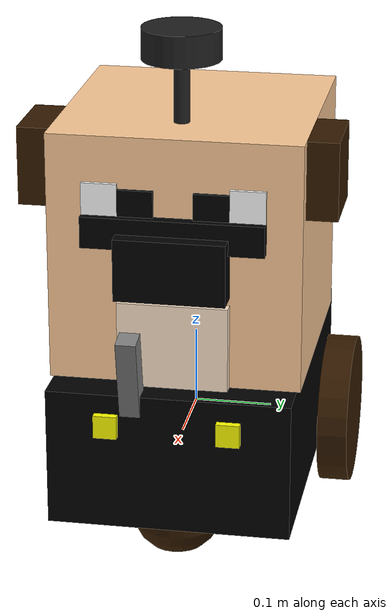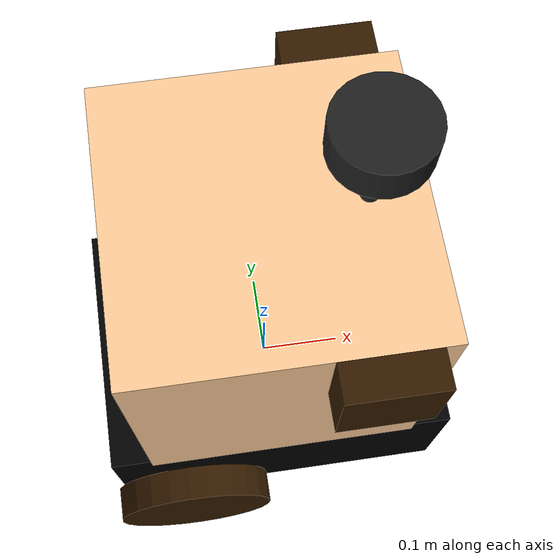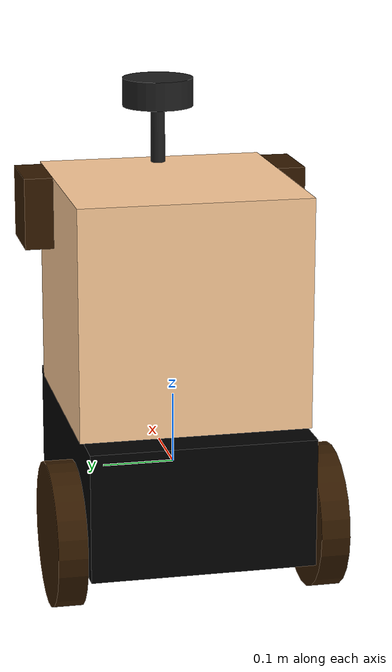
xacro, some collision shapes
<?xml version="1.0" ?>
<robot name='robot' xmlns:xacro="http://ros.org/wiki/xacro">

    <xacro:include filename="$(find robot_description)/urdf/gazebo.urdf.xacro" />
    <xacro:include filename="$(find robot_description)/urdf/lidar.urdf.xacro" />
    <xacro:include filename="$(find robot_description)/urdf/depth.urdf.xacro" />

     <!-- Define robot constants -->
  <xacro:property name="base_width" value="0.31"/>
  <xacro:property name="base_length" value="0.42"/>
  <xacro:property name="base_height" value="0.18"/>

  <xacro:property name="wheel_radius" value="0.10"/>
  <xacro:property name="wheel_width" value="0.04"/>
  <xacro:property name="wheel_ygap" value="0.025"/>
  <xacro:property name="wheel_zoff" value="0.05"/>
  <xacro:property name="wheel_xoff" value="0.12"/>

  <xacro:property name="caster_xoff" value="0.14"/>

  <!-- Define intertial property macros  -->
  <xacro:macro name="box_inertia" params="m w h d">
    <inertial>
      <origin xyz="0 0 0" rpy="${pi/2} 0 ${pi/2}"/>
      <mass value="${m}"/>
      <inertia ixx="${(m/12) * (h*h + d*d)}" ixy="0.0" ixz="0.0" iyy="${(m/12) * (w*w + d*d)}" iyz="0.0" izz="${(m/12) * (w*w + h*h)}"/>
    </inertial>
  </xacro:macro>

  <xacro:macro name="cylinder_inertia" params="m r h">
    <inertial>
      <origin xyz="0 0 0" rpy="${pi/2} 0 0" />
      <mass value="${m}"/>
      <inertia ixx="${(m/12) * (3*r*r + h*h)}" ixy = "0" ixz = "0" iyy="${(m/12) * (3*r*r + h*h)}" iyz = "0" izz="${(m/2) * (r*r)}"/>
    </inertial>
  </xacro:macro>

  <xacro:macro name="sphere_inertia" params="m r">
    <inertial>
      <mass value="${m}"/>
      <inertia ixx="${(2/5) * m * (r*r)}" ixy="0.0" ixz="0.0" iyy="${(2/5) * m * (r*r)}" iyz="0.0" izz="${(2/5) * m * (r*r)}"/>
    </inertial>
  </xacro:macro>

  <!-- Robot Base -->
  <link name="base_link">
    <visual>
      <geometry>
        <box size="${base_length} ${base_width} ${base_height}"/>
      </geometry>
      <material name="Black">
        <color rgba="0 0.0 0.0 1.0"/>
      </material>
    </visual>

        <collision>
      <geometry>
        <box size="${base_length} ${base_width} ${base_height}"/>
      </geometry>
    </collision>

    <xacro:box_inertia m="15" w="${base_width}" d="${base_length}" h="${base_height}"/>

  </link>

  <!-- Robot Footprint -->
  <link name="base_footprint"/>

  <joint name="base_joint" type="fixed">
    <parent link="base_link"/>
    <child link="base_footprint"/>
    <origin xyz="0.0 0.0 ${-(wheel_radius+wheel_zoff)}" rpy="0 0 0"/>
  </joint>

    <!-- Wheels -->
  <xacro:macro name="wheel" params="prefix x_reflect y_reflect">
    <link name="${prefix}_link">
      <visual>
        <origin xyz="0 0 0" rpy="${pi/2} 0 0"/>
        <geometry>
            <cylinder radius="${wheel_radius}" length="${wheel_width}"/>
        </geometry>
        <material name="Grey1">
			<color rgba="0.2 0.1 0.0 1.0"/>
		</material>
      </visual>
      <collision>
        <origin xyz="0 0 0" rpy="${pi/2} 0 0"/>
        <geometry>
          <cylinder radius="${wheel_radius}" length="${wheel_width}"/>
        </geometry>
      </collision>

      <xacro:cylinder_inertia m="0.5" r="${wheel_radius}" h="${wheel_width}"/>

    </link>

    <joint name="${prefix}_joint" type="continuous">
      <parent link="base_link"/>
      <child link="${prefix}_link"/>
      <origin xyz="${x_reflect*wheel_xoff} ${y_reflect*(base_width/2+wheel_ygap)} ${-wheel_zoff}" rpy="0 0 0"/>
      <axis xyz="0 1 0"/>
    </joint>
  </xacro:macro>

  <xacro:wheel prefix="drivewhl_l" x_reflect="-1" y_reflect="1" />
  <xacro:wheel prefix="drivewhl_r" x_reflect="-1" y_reflect="-1" />

    <!-- Caster Wheel -->
  <link name="front_caster">
    <visual>
      <geometry>
        <sphere radius="${(wheel_radius+wheel_zoff-(base_height/2))}"/>
      </geometry>
      <material name="Grey1">
		<color rgba="0.2 0.1 0.0 1.0"/>
	  </material>
    </visual>
        <collision>
      <origin xyz="0 0 0" rpy="0 0 0"/>
      <geometry>
        <sphere radius="${(wheel_radius+wheel_zoff-(base_height/2))}"/>
      </geometry>
    </collision>

    <xacro:sphere_inertia m="0.5" r="${(wheel_radius+wheel_zoff-(base_height/2))}"/>
  </link>

  <joint name="caster_joint" type="continuous">
    <parent link="base_link"/>
    <child link="front_caster"/>
    <origin xyz="${caster_xoff} 0.0 ${-(base_height/2)}" rpy="0 0 0"/>
    <axis xyz="1 0 0"/>
  </joint>

  <link name="fara1_link">
		<visual>
			<origin xyz="0 0 0" rpy="0 0 0"/>
			<geometry>
				<box size="0.04 0.03 0.03"/>
			</geometry>
	     	<material name="Pink">
				<color rgba="1.0 1.0 0.0 1.0"/>
			</material>
	   </visual>
	</link>

	<joint name="fara1_joint" type="fixed">
    	<parent link="base_link"/>
    	<child link="fara1_link"/>
    	<origin xyz="0.20 0.0775 0.05" rpy="0 0 0"/>
	</joint>

	<link name="fara2_link">
		<visual>
			<origin xyz="0 0 0" rpy="0 0 0"/>
			<geometry>
				<box size="0.04 0.03 0.03"/>
			</geometry>
	     	<material name="Pink">
				<color rgba="1.0 1.0 0.0 1.0"/>
			</material>
	   </visual>
	</link>

	<joint name="fara2_joint" type="fixed">
    	<parent link="base_link"/>
    	<child link="fara2_link"/>
    	<origin xyz="0.20 -0.0775 0.05" rpy="0 0 0"/>
	</joint>

 	<link name="base_shape">
		<visual>
		    <origin xyz="0 0 0" rpy="0 0 0"/>
			<geometry>
				<box size="0.32 0.32 0.32"/>
			</geometry>
			<material name="LightBrown">
	       		<color rgba="1 0.8 0.6 1.0"/>
	     	</material>
		</visual>

    <collision>
      <geometry>
        <box size="${base_length} ${base_length} ${base_length}"/>
      </geometry>
    </collision>

    <xacro:box_inertia m="15" w="${base_length}" d="${base_length}" h="${base_length}"/>

	</link>

	<joint name="base_shape_joint" type="fixed">
    	<parent link="base_link"/>
   		<child link="base_shape"/>
    	<origin xyz="0.0 0.0 0.25" rpy="0 0 0"/>
  	</joint>

	<link name="right_ear_link">
		<visual>
			<origin xyz="0 0 0" rpy="0 0 0"/>
			<geometry>
				<box size="0.1 0.04 0.1"/>
			</geometry>
	     	<material name="Grey1">
				<color rgba="0.2 0.1 0.0 1.0"/>
			</material>
	   </visual>
	</link>

	<joint name="right_ear_joint" type="fixed">
    	<parent link="base_shape"/>
    	<child link="right_ear_link"/>
    	<origin xyz="0.09 0.18 0.11" rpy="0 0 0"/>
	</joint>

	<link name="left_ear_link">
		<visual>
			<origin xyz="0 0 0" rpy="0 0 0"/>
			<geometry>
				<box size="0.1 0.04 0.1"/>
			</geometry>
	     	<material name="Grey1">
				<color rgba="0.2 0.1 0.0 1.0"/>
			</material>
	   </visual>
	</link>

	<joint name="left_ear_joint" type="fixed">
    	<parent link="base_shape"/>
    	<child link="left_ear_link"/>
    	<origin xyz="0.09 -0.18 0.11" rpy="0 0 0"/>
	</joint>

	<link name="eye_link">
		<visual>
			<origin xyz="0 0 0" rpy="0 0 0"/>
			<geometry>
				<box size="0.03 0.23 0.04"/>
			</geometry>
	     	<material name="Black">
				<color rgba="0.0 0.0 0.0 1.0"/>
			</material>
	   </visual>
	</link>

	<joint name="eye_joint" type="fixed">
    	<parent link="base_shape"/>
    	<child link="eye_link"/>
    	<origin xyz="0.16 0.0 0.04" rpy="0 0 0"/>
	</joint>

	<link name="nose_link">
		<visual>
			<origin xyz="0 0 0" rpy="0 0 0"/>
			<geometry>
				<box size="0.05 0.14 0.08"/>
			</geometry>
	     	<material name="Black">
				<color rgba="0.0 0.0 0.0 1.0"/>
			</material>
	   </visual>
	</link>

	<joint name="nose_joint" type="fixed">
    	<parent link="base_shape"/>
    	<child link="nose_link"/>
    	<origin xyz="0.17 0.0 0.0" rpy="0 0 0"/>
	</joint>

	<link name="mouth_link">
		<visual>
			<origin xyz="0 0 0" rpy="0 0 0"/>
			<geometry>
				<box size="0.03 0.14 0.11"/>
			</geometry>
	     	<material name="light_gray">
				<color rgba="1 0.9 0.8 1.0"/>
			</material>
	   </visual>
	</link>

	<joint name="mouth_joint" type="fixed">
    	<parent link="base_shape"/>
    	<child link="mouth_link"/>
    	<origin xyz="0.16 0.0 -0.105" rpy="0 0 0"/>
	</joint>

	<link name="left_eye_link">
		<visual>
			<origin xyz="0 0 0" rpy="0 0 0"/>
			<geometry>
				<box size="0.01 0.045 0.042"/>
			</geometry>
	     	<material name="White">
				<color rgba="1.0 1.0 1.0 1.0"/>
			</material>
	   </visual>
	</link>

	<joint name="left_eye_joint" type="fixed">
    	<parent link="base_shape"/>
    	<child link="left_eye_link"/>
    	<origin xyz="0.16 0.0925 0.08" rpy="0 0 0"/>
	</joint>

	<link name="right_eye_link">
		<visual>
			<origin xyz="0 0 0" rpy="0 0 0"/>
			<geometry>
				<box size="0.01 0.045 0.042"/>
			</geometry>
	     	<material name="White">
				<color rgba="1.0 1.0 1.0 1.0"/>
			</material>
	   </visual>
	</link>

	<joint name="right_eye_joint" type="fixed">
    	<parent link="base_shape"/>
    	<child link="right_eye_link"/>
    	<origin xyz="0.16 -0.0925 0.08" rpy="0 0 0"/>
	</joint>

	<link name="left_e_link">
		<visual>
			<origin xyz="0 0 0" rpy="0 0 0"/>
			<geometry>
				<box size="0.01 0.045 0.038"/>
			</geometry>
	     	<material name="Black">
				<color rgba="0.0 0.0 0.0 1.0"/>
			</material>
	   </visual>
	</link>

	<joint name="left_e_joint" type="fixed">
    	<parent link="base_shape"/>
    	<child link="left_e_link"/>
    	<origin xyz="0.16 0.0475 0.075" rpy="0 0 0"/>
	</joint>

	<link name="right_e_link">
		<visual>
			<origin xyz="0 0 0" rpy="0 0 0"/>
			<geometry>
				<box size="0.01 0.045 0.038"/>
			</geometry>
	     	<material name="Black">
				<color rgba="0.0 0.0 0.0 1.0"/>
			</material>
	   </visual>
	</link>

	<joint name="right_e_joint" type="fixed">
    	<parent link="base_shape"/>
    	<child link="right_e_link"/>
    	<origin xyz="0.16 -0.0475 0.075" rpy="0 0 0"/>
	</joint>

</robot>

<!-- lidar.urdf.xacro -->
<robot xmlns:xacro="http://www.ros.org/wiki/xacro">

    <joint name="laser_joint" type="fixed">
        <parent link="base_link"/>
        <child link="laser_frame"/>
        <origin xyz="0.1 0 0.515" rpy="0 0 0"/>
    </joint>

    <link name="laser_frame">
        <visual>
            <geometry>
                <cylinder radius="0.05" length="0.04"/>
            </geometry>
            <material name="black"/>
        </visual>
        <visual>
            <origin xyz="0 0 -0.05"/>
            <geometry>
                <cylinder radius="0.01" length="0.1"/>
            </geometry>
            <material name="black"/>
        </visual>
        <collision>
            <geometry>
                <cylinder radius="0.05" length="0.04"/>
            </geometry>
        </collision>
        <inertial>
            <origin xyz="0 0 0" rpy="0 0 0"/>
            <mass value="0.1" />
            <inertia ixx="${(1/12) * 0.1 * (3*0.05*0.05 + 0.04*0.04)}" ixy="0.0" ixz="0.0"
                     iyy="${(1/12) * 0.1 * (3*0.05*0.05 + 0.04*0.04)}" iyz="0.0"
                     izz="${(1/2) * 0.1 * (0.05*0.05)}" />
        </inertial>
    </link>

    <gazebo reference="laser_frame">
        <material>Gazebo/Black</material>

        <sensor name='laser_sensor_frame' type='gpu_lidar'>"
            <gz_frame_id>robot/laser_frame</gz_frame_id>
            <pose> 0 0 0 0 0 0 </pose>
            <visualize>true</visualize>
            <always_on>true</always_on>
            <update_rate>10</update_rate>
            <ray>
                <scan>
                    <horizontal>
                        <samples>360</samples>
                        <min_angle>-3.14</min_angle>
                        <max_angle>3.14</max_angle>
                    </horizontal>
                </scan>
                <range>
                    <min>0.3</min>
                    <max>12</max>
                </range>
                <noise>
                    <type>gaussian</type>
                    <mean>0.0</mean>
                    <stddev>0.007</stddev>
                </noise>
            </ray>
        </sensor>
    </gazebo>
</robot>

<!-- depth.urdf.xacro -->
<robot xmlns:xacro="http://www.ros.org/wiki/xacro">

    <xacro:property name="M_PI" value="3.1415926535897931" />

    <joint name="depth_joint" type="fixed">
        <parent link="base_link"/>
        <child link="depth_frame"/>
        <origin xyz="0.20 0 0.11" rpy="0 0.2 0"/>
    </joint>

    <material name="aluminum">
      <color rgba="0.5 0.5 0.5 1"/>
    </material>

    <link name="depth_frame">
        <visual>
            <origin xyz="0.00465 -0.0475 0" rpy="${M_PI/2} 0 ${M_PI/2}"/>
            <geometry>
                <mesh filename="file://$(find robot_description)/urdf/d455.stl" scale="0.001 0.001 0.001"/>
                <!--box size="0.026 0.124 0.029"/-->
            </geometry>
            <material name="aluminum"/>
        </visual>
        <collision>
            <origin xyz="0.00465 -0.0475 0" rpy="${M_PI/2} 0 ${M_PI/2}"/>
            <geometry>
                <box size="0.026 0.124 0.029"/>
            </geometry>
        </collision>
        <inertial>
            <origin xyz="0 0 0" rpy="0 0 0"/>
            <mass value="0.116" />
            <inertia ixx="${(1/12) * 0.116 * (0.026*0.026+0.029*0.029)}" ixy="0.0" ixz="0.0"
                     iyy="${(1/12) * 0.116 * (0.124*0.124+0.029*0.029)}" iyz="0.0"
                     izz="${(1/12) * 0.116 * (0.124*0.124+0.026*0.026)}" />
        </inertial>
    </link>

    <gazebo reference="depth_frame">
        <sensor name='depth_sensor_frame' type='depth_camera'>"
            <gz_frame_id>robot/depth_frame</gz_frame_id>
            <pose> 0 0 0 0 0 0 </pose>
            <always_on>true</always_on>
            <update_rate>10</update_rate>
            <camera>
                <horizontal_fov>1.51843645</horizontal_fov>
                <image>
                    <width>848</width>
                    <height>480</height>
                    <format>R_FLOAT32</format>
                </image>
                <clip>
                    <near>0.1</near>
                    <far>10</far>
                </clip>
                <lens>
                    <intrinsics>
                    <fx>421.61578369140625</fx>
                    <fy>421.61578369140625</fy>
                    <cx>422.2854309082031</cx>
                    <cy>236.57237243652344</cy>
                    <s>0</s>
                    </intrinsics>
                </lens>
                <noise>
                    <type>gaussian</type>
                    <mean>0.0</mean>
                    <stddev>0.007</stddev>
                </noise>
            </camera>
        </sensor>
        <sensor name="color_sensor_frame" type="camera">
            <gz_frame_id>robot/depth_frame</gz_frame_id>
            <pose>0 0 0 0 0 0</pose>
            <update_rate>30</update_rate>
            <always_on>true</always_on>
            <camera>
                <horizontal_fov>1.20427718</horizontal_fov>
                <image>
                    <width>848</width>
                    <height>480</height>
                </image>
                <clip>
                    <near>0.1</near>
                    <far>50</far>
                </clip>
                <lens>
                    <intrinsics>
                    <fx>615.9603271484375</fx>
                    <fy>616.227294921875</fy>
                    <cx>419.83026123046875</cx>
                    <cy>245.1431427001953</cy>
                    <s>0</s>
                    </intrinsics>
                </lens>
            </camera>
        </sensor>
    </gazebo>
</robot>
